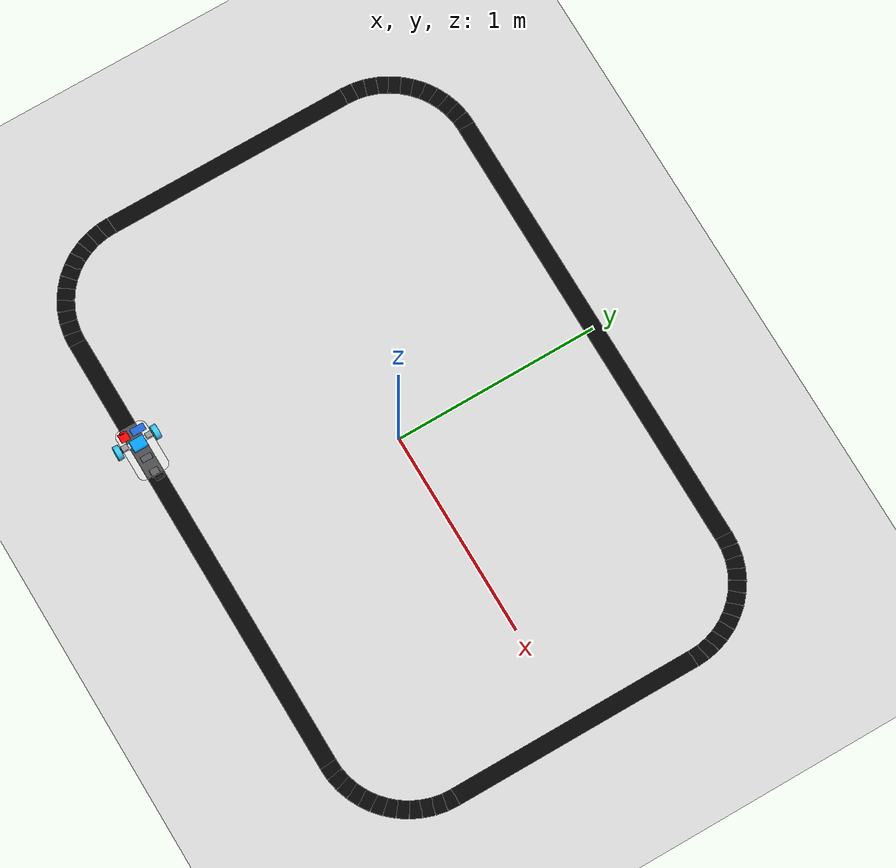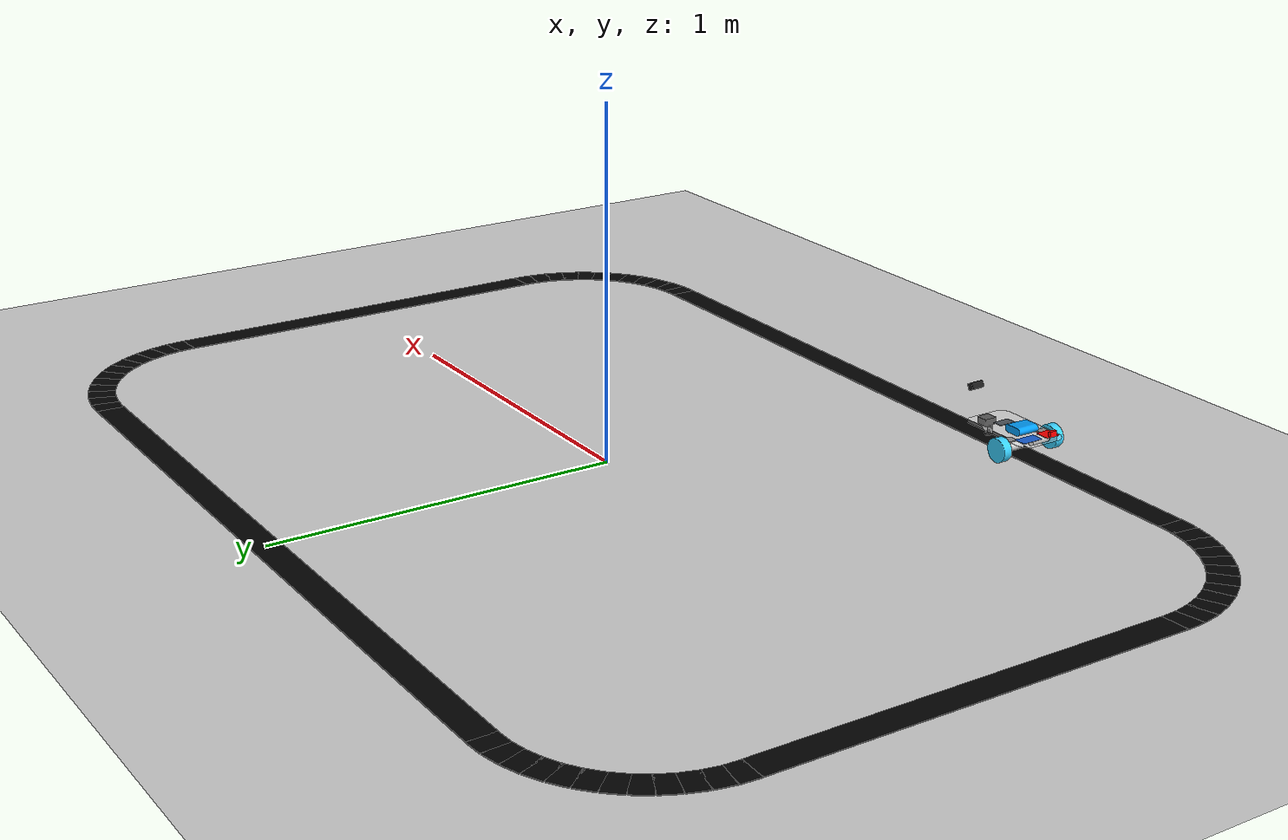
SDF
<?xml version="1.0" ?>
<sdf version="1.8">
  <world name="line_follower">
    <physics name="10ms" type="ignored">
      <max_step_size>0.01</max_step_size>
      <real_time_update_rate>0</real_time_update_rate>
    </physics>
    <plugin filename="gz-sim-physics-system"           name="gz::sim::systems::Physics"/>
    <plugin filename="gz-sim-contact-system"           name="gz::sim::systems::Contact"/>
    <plugin filename="gz-sim-sensors-system"           name="gz::sim::systems::Sensors">
      <render_engine>ogre2</render_engine>
    </plugin>
    <plugin filename="gz-sim-scene-broadcaster-system" name="gz::sim::systems::SceneBroadcaster"/>
    <plugin filename="gz-sim-user-commands-system"     name="gz::sim::systems::UserCommands"/>

    <plugin
      filename="gz-sim-python-system-loader-system"
      name="gz::sim::systems::PythonSystemLoader">
      <module_name>line_follower_learner</module_name>
      <agent_name>rover</agent_name>
      <frame_skip>3</frame_skip>
    </plugin>

    <light name="sun" type="directional">
      <cast_shadows>true</cast_shadows>
      <pose>0 0 10 0 0 0</pose>
      <diffuse>0.95 0.95 0.95 1</diffuse>
      <specular>0.2 0.2 0.2 1</specular>
      <direction>-0.5 0.1 -0.9</direction>
    </light>

    <model name="ground_plane">
      <static>true</static>
      <link name="link">
        <collision name="collision">
          <geometry><plane><normal>0 0 1</normal><size>100 100</size></plane></geometry>
        </collision>
        <visual name="visual">
          <geometry><plane><normal>0 0 1</normal><size>100 100</size></plane></geometry>
          <material>
            <!-- Light gray so the black line has high contrast in the
                 camera image. The threshold-based detector in the sync
                 gate relies on this. -->
            <ambient>0.85 0.85 0.85 1</ambient>
            <diffuse>0.85 0.85 0.85 1</diffuse>
            <specular>0.5 0.5 0.5 1</specular>
          </material>
        </visual>
      </link>
    </model>

    <model name="rover">
      <pose>-0.5 -1.0 0.085 0 0 1.5708</pose>
      <include merge="true">
        <uri>package://gazebo_gymnasium_resources/models/rover</uri>
      </include>
    </model>

    <!-- The line track. Mostly visual, no collision. -->
    <include>
      <uri>package://gazebo_gymnasium_resources/models/line_track</uri>
      <pose>0 0 0 0 0 0</pose>
    </include>
  </world>
</sdf>

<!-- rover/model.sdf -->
<sdf version='1.11'>
  <model name='rover'>
    <link name='base_link'>
      <inertial>
        <pose>-0.00237104 0.0277886 -0.020183599999999999 0 0 0</pose>
        <mass>0.35311599999999999</mass>
        <inertia>
          <ixx>0.00151318</ixx>
          <ixy>3.1576699999999999e-05</ixy>
          <ixz>4.1676499999999998e-06</ixz>
          <iyy>0.00036664100000000002</iyy>
          <iyz>-9.9848999999999999e-05</iyz>
          <izz>0.00182412</izz>
        </inertia>
      </inertial>
      <visual name='base_link_visual'>
        <pose>0.016086300000000001 -0.0852797 0.27276499999999998 -4.7878224133139768e-16 1.5707963267948966 0</pose>
        <geometry>
          <mesh>
            <scale>1 1 1</scale>
            <uri>model://gazebo_gymnasium_resources/models/rover/assets/left_motor.stl</uri>
          </mesh>
        </geometry>
        <material>
          <diffuse>0.808823764 0.808823764 0.808823764 1</diffuse>
          <ambient>0.808823764 0.808823764 0.808823764 1</ambient>
        </material>
      </visual>
      <visual name='base_link_visual_1'>
        <pose>-0.088691500000000006 -0.18808 -0.0273587 0 0 -1.5708</pose>
        <geometry>
          <mesh>
            <scale>1 1 1</scale>
            <uri>model://gazebo_gymnasium_resources/models/rover/assets/base_plate.stl</uri>
          </mesh>
        </geometry>
        <material>
          <diffuse>1 1 1 0.300000012</diffuse>
          <ambient>1 1 1 0.300000012</ambient>
        </material>
      </visual>
      <visual name='base_link_visual_2'>
        <pose>-0.47371400000000002 0.0946882 -0.046858700000000003 3.1415899999999999 0 -3.1415899999999999</pose>
        <geometry>
          <mesh>
            <scale>1 1 1</scale>
            <uri>model://gazebo_gymnasium_resources/models/rover/assets/front_wheel_upper_joint.stl</uri>
          </mesh>
        </geometry>
        <material>
          <diffuse>0.622548759 0.622548759 0.622548759 1</diffuse>
          <ambient>0.622548759 0.622548759 0.622548759 1</ambient>
        </material>
      </visual>
      <visual name='base_link_visual_3'>
        <pose>-0.47271400000000002 -0.22015199999999999 -0.046858700000000003 0 0 -3.1415899999999999</pose>
        <geometry>
          <mesh>
            <scale>1 1 1</scale>
            <uri>model://gazebo_gymnasium_resources/models/rover/assets/front_wheel_bracket.stl</uri>
          </mesh>
        </geometry>
        <material>
          <diffuse>0.127451256 0.127451256 0.127451256 1</diffuse>
          <ambient>0.127451256 0.127451256 0.127451256 1</ambient>
        </material>
      </visual>
      <visual name='base_link_visual_4'>
        <pose>-0.14862900000000001 0.205404 -0.0273587 3.1415899999999999 -1.503819326961759e-32 2.5673900000000004e-16</pose>
        <geometry>
          <mesh>
            <scale>1 1 1</scale>
            <uri>model://gazebo_gymnasium_resources/models/rover/assets/left_motor_bracket.stl</uri>
          </mesh>
        </geometry>
        <material>
          <diffuse>0.441176265 0.436275005 0.436275005 1</diffuse>
          <ambient>0.441176265 0.436275005 0.436275005 1</ambient>
        </material>
      </visual>
      <visual name='base_link_visual_5'>
        <pose>-0.124871 0.087574899999999997 -0.0243587 0 0 -1.5708</pose>
        <geometry>
          <mesh>
            <scale>1 1 1</scale>
            <uri>model://gazebo_gymnasium_resources/models/rover/assets/battery.stl</uri>
          </mesh>
        </geometry>
        <material>
          <diffuse>0.014705874 0.632352531 1 1</diffuse>
          <ambient>0.014705874 0.632352531 1 1</ambient>
        </material>
      </visual>
      <visual name='base_link_visual_6'>
        <pose>0.119292 0.094404399999999999 -0.021358700000000001 0 0 4.7878400000000003e-16</pose>
        <geometry>
          <mesh>
            <scale>1 1 1</scale>
            <uri>model://gazebo_gymnasium_resources/models/rover/assets/esp32.stl</uri>
          </mesh>
        </geometry>
        <material>
          <diffuse>0.328431249 0.352941275 0.377451241 1</diffuse>
          <ambient>0.328431249 0.352941275 0.377451241 1</ambient>
        </material>
      </visual>
      <visual name='base_link_visual_7'>
        <pose>0.20396 0.300238 -0.021358700000000001 0 0 4.7878400000000003e-16</pose>
        <geometry>
          <mesh>
            <scale>1 1 1</scale>
            <uri>model://gazebo_gymnasium_resources/models/rover/assets/motor_controller.stl</uri>
          </mesh>
        </geometry>
        <material>
          <diffuse>1 0 0 1</diffuse>
          <ambient>1 0 0 1</ambient>
        </material>
      </visual>
      <visual name='base_link_visual_8'>
        <pose>-0.019072599999999999 0.115532 0.27276499999999998 3.141589999990253 1.5707963267948966 0</pose>
        <geometry>
          <mesh>
            <scale>1 1 1</scale>
            <uri>model://gazebo_gymnasium_resources/models/rover/assets/right_motor.stl</uri>
          </mesh>
        </geometry>
        <material>
          <diffuse>0.808823764 0.808823764 0.808823764 1</diffuse>
          <ambient>0.808823764 0.808823764 0.808823764 1</ambient>
        </material>
      </visual>
      <visual name='base_link_visual_9'>
        <pose>0.26251000000000002 0.228404 -0.021358700000000001 0 0 4.7878400000000003e-16</pose>
        <geometry>
          <mesh>
            <scale>1 1 1</scale>
            <uri>model://gazebo_gymnasium_resources/models/rover/assets/voltage_regulator.stl</uri>
          </mesh>
        </geometry>
        <material>
          <diffuse>0.107843123 0.397058755 0.862744987 1</diffuse>
          <ambient>0.107843123 0.397058755 0.862744987 1</ambient>
        </material>
      </visual>
      <visual name='base_link_visual_10'>
        <pose>0.14564199999999999 0.0058481200000000001 -0.0273587 3.1415899999999999 0 -3.1415899999999999</pose>
        <geometry>
          <mesh>
            <scale>1 1 1</scale>
            <uri>model://gazebo_gymnasium_resources/models/rover/assets/right_motor_bracket.stl</uri>
          </mesh>
        </geometry>
        <material>
          <diffuse>0.441176265 0.436275005 0.436275005 1</diffuse>
          <ambient>0.441176265 0.436275005 0.436275005 1</ambient>
        </material>
      </visual>
    </link>
    <joint name='front_swivel' type='revolute'>
      <pose relative_to='base_link'>-0.00149314 -0.097873799999999997 -0.050358699999999999 0 2.4651899999999999e-32 3.67761e-16</pose>
      <parent>base_link</parent>
      <child>front_wheel_lower_joint</child>
      <axis>
        <xyz>0 0 1</xyz>
        <limit>
          <lower>-inf</lower>
          <upper>inf</upper>
        </limit>
        <dynamics>
          <spring_reference>0</spring_reference>
          <spring_stiffness>0</spring_stiffness>
        </dynamics>
      </axis>
    </joint>
    <link name='front_wheel_lower_joint'>
      <pose relative_to='front_swivel'>0 0 0 0 0 0</pose>
      <inertial>
        <pose>0 0 0 0 0 0</pose>
        <mass>1.0000000000000001e-09</mass>
        <inertia>
          <ixx>1.0000000000000001e-09</ixx>
          <ixy>0</ixy>
          <ixz>0</ixz>
          <iyy>1.0000000000000001e-09</iyy>
          <iyz>0</iyz>
          <izz>1.0000000000000001e-09</izz>
        </inertia>
      </inertial>
      <visual name='front_wheel_lower_joint_visual'>
        <pose>0.34329399999999999 -0.19021199999999999 0 3.1415899999999999 0 6.16298e-33</pose>
        <geometry>
          <mesh>
            <scale>1 1 1</scale>
            <uri>model://gazebo_gymnasium_resources/models/rover/assets/front_wheel_lower_joint.stl</uri>
          </mesh>
        </geometry>
        <material>
          <diffuse>0.808823764 0.808823764 0.808823764 1</diffuse>
          <ambient>0.808823764 0.808823764 0.808823764 1</ambient>
        </material>
      </visual>
    </link>
    <joint name='front_axle' type='revolute'>
      <pose relative_to='front_wheel_lower_joint'>0.0063499999999999997 0.0096500000000000006 -0.017113199999999999 2.6535897933403332e-06 -1.5707926536359933 3.1415926535897931</pose>
      <parent>front_wheel_lower_joint</parent>
      <child>front_wheel</child>
      <axis>
        <xyz>0 0 1</xyz>
        <limit>
          <lower>-inf</lower>
          <upper>inf</upper>
        </limit>
        <dynamics>
          <spring_reference>0</spring_reference>
          <spring_stiffness>0</spring_stiffness>
        </dynamics>
      </axis>
    </joint>
    <link name='front_wheel'>
      <pose relative_to='front_axle'>0 0 0 0 0 0</pose>
      <inertial>
        <pose>0 0 0 0 0 0</pose>
        <mass>1.0000000000000001e-09</mass>
        <inertia>
          <ixx>1.0000000000000001e-09</ixx>
          <ixy>0</ixy>
          <ixz>0</ixz>
          <iyy>1.0000000000000001e-09</iyy>
          <iyz>0</iyz>
          <izz>1.0000000000000001e-09</izz>
        </inertia>
      </inertial>
      <visual name='front_wheel_visual'>
        <pose>0.34473399999999998 -0.122278 0 3.1415899999999999 9.3588297156177823e-62 -2.5316400000000017e-47</pose>
        <geometry>
          <mesh>
            <scale>1 1 1</scale>
            <uri>model://gazebo_gymnasium_resources/models/rover/assets/front_wheel.stl</uri>
          </mesh>
        </geometry>
        <material>
          <diffuse>0.308823764 0.308823764 0.308823764 1</diffuse>
          <ambient>0.308823764 0.308823764 0.308823764 1</ambient>
        </material>
      </visual>
      <collision name='front_wheel_collision'>
        <geometry>
          <sphere>
            <radius>0.025</radius>
          </sphere>
        </geometry>
        <surface>
          <friction>
            <ode>
              <mu>0.1</mu>
              <mu2>0.1</mu2>
            </ode>
          </friction>
        </surface>
      </collision>

    </link>
    <joint name='left_axle' type='revolute'>
      <pose relative_to='base_link'>0.079786300000000004 0.061126199999999999 -0.050408700000000001 1.5708 -4.4408920985006262e-16 -1.5708</pose>
      <parent>base_link</parent>
      <child>left_wheel</child>
      <axis>
        <xyz>0 0 1</xyz>
        <limit>
          <lower>-inf</lower>
          <upper>inf</upper>
        </limit>
        <dynamics>
          <spring_reference>0</spring_reference>
          <spring_stiffness>0</spring_stiffness>
        </dynamics>
      </axis>
    </joint>
    <link name='left_wheel'>
      <pose relative_to='left_axle'>0 0 0 0 0 0</pose>
      <inertial>
        <pose>5.5511199999999995e-17 -2.7755599999999997e-17 -0.01325 0 0 0</pose>
        <mass>0.034000000000000002</mass>
        <inertia>
          <ixx>1.2006300000000001e-05</ixx>
          <ixy>-8.3133099999999994e-37</ixy>
          <ixz>1.6409400000000001e-36</ixz>
          <iyy>1.2006300000000001e-05</iyy>
          <iyz>7.5581399999999997e-38</iyz>
          <izz>2.0040399999999999e-05</izz>
        </inertia>
      </inertial>
      <visual name='left_wheel_visual'>
        <pose>0.46452900000000003 -0.12765399999999999 -0.026499999999999999 -9.4077000000000004e-33 -8.9189099999999999e-32 2.4630199999999999e-32</pose>
        <geometry>
          <mesh>
            <scale>1 1 1</scale>
            <uri>model://gazebo_gymnasium_resources/models/rover/assets/left_wheel.stl</uri>
          </mesh>
        </geometry>
        <material>
          <diffuse>0.220588744 0.818627477 1 1</diffuse>
          <ambient>0.220588744 0.818627477 1 1</ambient>
        </material>
      </visual>
      <collision name='left_wheel_collision'>
        <geometry>
          <sphere>
            <radius>0.034</radius>
          </sphere>
        </geometry>
        <surface>
          <friction>
            <ode>
              <mu>1.2</mu>
              <mu2>0.8</mu2>
            </ode>
          </friction>
        </surface>
      </collision>

    </link>
    <joint name='right_axle' type='revolute'>
      <pose relative_to='base_link'>-0.082772600000000002 0.061126199999999999 -0.050408700000000001 3.1415926535897918 1.5707926536359933 -3.1415926535897931</pose>
      <parent>base_link</parent>
      <child>right_wheel</child>
      <axis>
        <xyz>0 0 -1</xyz>
        <limit>
          <lower>-inf</lower>
          <upper>inf</upper>
        </limit>
        <dynamics>
          <spring_reference>0</spring_reference>
          <spring_stiffness>0</spring_stiffness>
        </dynamics>
      </axis>
    </joint>
    <link name='right_wheel'>
      <pose relative_to='right_axle'>0 0 0 0 0 0</pose>
      <inertial>
        <pose>0 -3.44865e-32 -0.01325 0 0 0</pose>
        <mass>0.034000000000000002</mass>
        <inertia>
          <ixx>1.2006300000000001e-05</ixx>
          <ixy>1.77587e-36</ixy>
          <ixz>1.38229e-36</ixz>
          <iyy>1.2006300000000001e-05</iyy>
          <iyz>-4.2157999999999999e-37</iyz>
          <izz>2.0040399999999999e-05</izz>
        </inertia>
      </inertial>
      <visual name='right_wheel_visual'>
        <pose>0.46452900000000003 -0.028653700000000001 -0.026499999999999999 -1.8503099999999999e-32 8.4744599999999993e-34 7.3955699999999999e-32</pose>
        <geometry>
          <mesh>
            <scale>1 1 1</scale>
            <uri>model://gazebo_gymnasium_resources/models/rover/assets/right_wheel.stl</uri>
          </mesh>
        </geometry>
        <material>
          <diffuse>0.220588744 0.818627477 1 1</diffuse>
          <ambient>0.220588744 0.818627477 1 1</ambient>
        </material>
      </visual>
      <collision name='right_wheel_collision'>
        <geometry>
          <sphere>
            <radius>0.034</radius>
          </sphere>
        </geometry>
        <surface>
          <friction>
            <ode>
              <mu>1.2</mu>
              <mu2>0.8</mu2>
            </ode>
          </friction>
        </surface>
      </collision>

    </link>

    <plugin
      filename="gz-sim-diff-drive-system"
      name="gz::sim::systems::DiffDrive">
      <left_joint>left_axle</left_joint>
      <right_joint>right_axle</right_joint>
      <wheel_separation>0.163</wheel_separation>
      <wheel_radius>0.034</wheel_radius>
      <odom_publish_frequency>30</odom_publish_frequency>
      <!-- Physical caster-pop limit is around 1 m/s forward; clamp here
           so even a misbehaving policy can't blow past it. Yaw limit
           matches the env's MAX_Z_VEL spec. -->
      <max_linear_velocity>1.0</max_linear_velocity>
      <min_linear_velocity>-1.0</min_linear_velocity>
      <max_angular_velocity>1.25</max_angular_velocity>
      <min_angular_velocity>-1.25</min_angular_velocity>
    </plugin>

    <plugin
      filename="gz-sim-joint-state-publisher-system"
      name="gz::sim::systems::JointStatePublisher">
      <joint_name>left_axle</joint_name>
      <joint_name>right_axle</joint_name>
      <joint_name>front_swivel</joint_name>
      <joint_name>front_axle</joint_name>
    </plugin>

    <link name="camera_link">
      <pose relative_to="base_link">0 -0.15 0.05 0 0.5 -1.5708</pose>
      <inertial>
        <mass>0.005</mass>
        <inertia>
          <ixx>1e-7</ixx>
          <ixy>0</ixy>
          <ixz>0</ixz>
          <iyy>1e-7</iyy>
          <iyz>0</iyz>
          <izz>1e-7</izz>
        </inertia>
      </inertial>
      <visual name="visual">
        <geometry>
          <box>
            <size>0.02 0.04 0.02</size>
          </box>
        </geometry>
        <material>
          <ambient>0.1 0.1 0.1 1</ambient>
          <diffuse>0.1 0.1 0.1 1</diffuse>
          <specular>0.05 0.05 0.05 1</specular>
        </material>
      </visual>
      <sensor name="camera" type="camera">
        <pose>0 0 0 0 0 0</pose>
        <topic>camera</topic>
        <gz_frame_id>rover/camera_link</gz_frame_id>
        <update_rate>15</update_rate>
        <always_on>1</always_on>
        <visualize>true</visualize>
        <camera>
          <horizontal_fov>1.047</horizontal_fov>
          <image>
            <width>160</width>
            <height>120</height>
            <format>R8G8B8</format>
          </image>
          <clip>
            <near>0.05</near>
            <far>50</far>
          </clip>
        </camera>
      </sensor>
    </link>

    <joint name="camera_joint" type="fixed">
      <parent>base_link</parent>
      <child>camera_link</child>
    </joint>

  </model>
</sdf>

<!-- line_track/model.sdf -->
<sdf version="1.8">
  <!-- Auto-generated by scripts/generate_line_track.py. Hand edits will be
       lost on regeneration; tune the constants at the top of the script
       and re-run instead. -->
  <model name="line_track">
    <static>true</static>
    <link name="track">
      <visual name='straight_top'>
        <pose>0.000000 1.000000 0.001000 0.000000 0.000000 0.000000</pose>
        <geometry>
          <box>
            <size>2.200000 0.080000 0.002000</size>
          </box>
        </geometry>
      <material>
        <ambient>0.02 0.02 0.02 1</ambient>
        <diffuse>0.02 0.02 0.02 1</diffuse>
        <specular>0.0 0.0 0.0 1</specular>
      </material>
      </visual>
      <visual name='straight_bottom'>
        <pose>0.000000 -1.000000 0.001000 0.000000 0.000000 0.000000</pose>
        <geometry>
          <box>
            <size>2.200000 0.080000 0.002000</size>
          </box>
        </geometry>
      <material>
        <ambient>0.02 0.02 0.02 1</ambient>
        <diffuse>0.02 0.02 0.02 1</diffuse>
        <specular>0.0 0.0 0.0 1</specular>
      </material>
      </visual>
      <visual name='straight_right'>
        <pose>1.500000 0.000000 0.001000 0.000000 0.000000 0.000000</pose>
        <geometry>
          <box>
            <size>0.080000 1.200000 0.002000</size>
          </box>
        </geometry>
      <material>
        <ambient>0.02 0.02 0.02 1</ambient>
        <diffuse>0.02 0.02 0.02 1</diffuse>
        <specular>0.0 0.0 0.0 1</specular>
      </material>
      </visual>
      <visual name='straight_left'>
        <pose>-1.500000 0.000000 0.001000 0.000000 0.000000 0.000000</pose>
        <geometry>
          <box>
            <size>0.080000 1.200000 0.002000</size>
          </box>
        </geometry>
      <material>
        <ambient>0.02 0.02 0.02 1</ambient>
        <diffuse>0.02 0.02 0.02 1</diffuse>
        <specular>0.0 0.0 0.0 1</specular>
      </material>
      </visual>
      <visual name='corner_tr_00'>
        <pose>1.499144 0.626161 0.001000 0.000000 0.000000 1.636246</pose>
        <geometry>
          <box>
            <size>0.054978 0.080000 0.002000</size>
          </box>
        </geometry>
      <material>
        <ambient>0.02 0.02 0.02 1</ambient>
        <diffuse>0.02 0.02 0.02 1</diffuse>
        <specular>0.0 0.0 0.0 1</specular>
      </material>
      </visual>
      <visual name='corner_tr_01'>
        <pose>1.492314 0.678036 0.001000 0.000000 0.000000 1.767146</pose>
        <geometry>
          <box>
            <size>0.054978 0.080000 0.002000</size>
          </box>
        </geometry>
      <material>
        <ambient>0.02 0.02 0.02 1</ambient>
        <diffuse>0.02 0.02 0.02 1</diffuse>
        <specular>0.0 0.0 0.0 1</specular>
      </material>
      </visual>
      <visual name='corner_tr_02'>
        <pose>1.478772 0.728576 0.001000 0.000000 0.000000 1.898046</pose>
        <geometry>
          <box>
            <size>0.054978 0.080000 0.002000</size>
          </box>
        </geometry>
      <material>
        <ambient>0.02 0.02 0.02 1</ambient>
        <diffuse>0.02 0.02 0.02 1</diffuse>
        <specular>0.0 0.0 0.0 1</specular>
      </material>
      </visual>
      <visual name='corner_tr_03'>
        <pose>1.458749 0.776915 0.001000 0.000000 0.000000 2.028945</pose>
        <geometry>
          <box>
            <size>0.054978 0.080000 0.002000</size>
          </box>
        </geometry>
      <material>
        <ambient>0.02 0.02 0.02 1</ambient>
        <diffuse>0.02 0.02 0.02 1</diffuse>
        <specular>0.0 0.0 0.0 1</specular>
      </material>
      </visual>
      <visual name='corner_tr_04'>
        <pose>1.432588 0.822228 0.001000 0.000000 0.000000 2.159845</pose>
        <geometry>
          <box>
            <size>0.054978 0.080000 0.002000</size>
          </box>
        </geometry>
      <material>
        <ambient>0.02 0.02 0.02 1</ambient>
        <diffuse>0.02 0.02 0.02 1</diffuse>
        <specular>0.0 0.0 0.0 1</specular>
      </material>
      </visual>
      <visual name='corner_tr_05'>
        <pose>1.400736 0.863738 0.001000 0.000000 0.000000 2.290745</pose>
        <geometry>
          <box>
            <size>0.054978 0.080000 0.002000</size>
          </box>
        </geometry>
      <material>
        <ambient>0.02 0.02 0.02 1</ambient>
        <diffuse>0.02 0.02 0.02 1</diffuse>
        <specular>0.0 0.0 0.0 1</specular>
      </material>
      </visual>
      <visual name='corner_tr_06'>
        <pose>1.363738 0.900736 0.001000 0.000000 0.000000 2.421644</pose>
        <geometry>
          <box>
            <size>0.054978 0.080000 0.002000</size>
          </box>
        </geometry>
      <material>
        <ambient>0.02 0.02 0.02 1</ambient>
        <diffuse>0.02 0.02 0.02 1</diffuse>
        <specular>0.0 0.0 0.0 1</specular>
      </material>
      </visual>
      <visual name='corner_tr_07'>
        <pose>1.322228 0.932588 0.001000 0.000000 0.000000 2.552544</pose>
        <geometry>
          <box>
            <size>0.054978 0.080000 0.002000</size>
          </box>
        </geometry>
      <material>
        <ambient>0.02 0.02 0.02 1</ambient>
        <diffuse>0.02 0.02 0.02 1</diffuse>
        <specular>0.0 0.0 0.0 1</specular>
      </material>
      </visual>
      <visual name='corner_tr_08'>
        <pose>1.276915 0.958749 0.001000 0.000000 0.000000 2.683444</pose>
        <geometry>
          <box>
            <size>0.054978 0.080000 0.002000</size>
          </box>
        </geometry>
      <material>
        <ambient>0.02 0.02 0.02 1</ambient>
        <diffuse>0.02 0.02 0.02 1</diffuse>
        <specular>0.0 0.0 0.0 1</specular>
      </material>
      </visual>
      <visual name='corner_tr_09'>
        <pose>1.228576 0.978772 0.001000 0.000000 0.000000 2.814343</pose>
        <geometry>
          <box>
            <size>0.054978 0.080000 0.002000</size>
          </box>
        </geometry>
      <material>
        <ambient>0.02 0.02 0.02 1</ambient>
        <diffuse>0.02 0.02 0.02 1</diffuse>
        <specular>0.0 0.0 0.0 1</specular>
      </material>
      </visual>
      <visual name='corner_tr_10'>
        <pose>1.178036 0.992314 0.001000 0.000000 0.000000 2.945243</pose>
        <geometry>
          <box>
            <size>0.054978 0.080000 0.002000</size>
          </box>
        </geometry>
      <material>
        <ambient>0.02 0.02 0.02 1</ambient>
        <diffuse>0.02 0.02 0.02 1</diffuse>
        <specular>0.0 0.0 0.0 1</specular>
      </material>
      </visual>
      <visual name='corner_tr_11'>
        <pose>1.126161 0.999144 0.001000 0.000000 0.000000 3.076143</pose>
        <geometry>
          <box>
            <size>0.054978 0.080000 0.002000</size>
          </box>
        </geometry>
      <material>
        <ambient>0.02 0.02 0.02 1</ambient>
        <diffuse>0.02 0.02 0.02 1</diffuse>
        <specular>0.0 0.0 0.0 1</specular>
      </material>
      </visual>
      <visual name='corner_tl_00'>
        <pose>-1.126161 0.999144 0.001000 0.000000 0.000000 3.207043</pose>
        <geometry>
          <box>
            <size>0.054978 0.080000 0.002000</size>
          </box>
        </geometry>
      <material>
        <ambient>0.02 0.02 0.02 1</ambient>
        <diffuse>0.02 0.02 0.02 1</diffuse>
        <specular>0.0 0.0 0.0 1</specular>
      </material>
      </visual>
      <visual name='corner_tl_01'>
        <pose>-1.178036 0.992314 0.001000 0.000000 0.000000 3.337942</pose>
        <geometry>
          <box>
            <size>0.054978 0.080000 0.002000</size>
          </box>
        </geometry>
      <material>
        <ambient>0.02 0.02 0.02 1</ambient>
        <diffuse>0.02 0.02 0.02 1</diffuse>
        <specular>0.0 0.0 0.0 1</specular>
      </material>
      </visual>
      <visual name='corner_tl_02'>
        <pose>-1.228576 0.978772 0.001000 0.000000 0.000000 3.468842</pose>
        <geometry>
          <box>
            <size>0.054978 0.080000 0.002000</size>
          </box>
        </geometry>
      <material>
        <ambient>0.02 0.02 0.02 1</ambient>
        <diffuse>0.02 0.02 0.02 1</diffuse>
        <specular>0.0 0.0 0.0 1</specular>
      </material>
      </visual>
      <visual name='corner_tl_03'>
        <pose>-1.276915 0.958749 0.001000 0.000000 0.000000 3.599742</pose>
        <geometry>
          <box>
            <size>0.054978 0.080000 0.002000</size>
          </box>
        </geometry>
      <material>
        <ambient>0.02 0.02 0.02 1</ambient>
        <diffuse>0.02 0.02 0.02 1</diffuse>
        <specular>0.0 0.0 0.0 1</specular>
      </material>
      </visual>
      <visual name='corner_tl_04'>
        <pose>-1.322228 0.932588 0.001000 0.000000 0.000000 3.730641</pose>
        <geometry>
          <box>
            <size>0.054978 0.080000 0.002000</size>
          </box>
        </geometry>
      <material>
        <ambient>0.02 0.02 0.02 1</ambient>
        <diffuse>0.02 0.02 0.02 1</diffuse>
        <specular>0.0 0.0 0.0 1</specular>
      </material>
      </visual>
      <visual name='corner_tl_05'>
        <pose>-1.363738 0.900736 0.001000 0.000000 0.000000 3.861541</pose>
        <geometry>
          <box>
            <size>0.054978 0.080000 0.002000</size>
          </box>
        </geometry>
      <material>
        <ambient>0.02 0.02 0.02 1</ambient>
        <diffuse>0.02 0.02 0.02 1</diffuse>
        <specular>0.0 0.0 0.0 1</specular>
      </material>
      </visual>
      <visual name='corner_tl_06'>
        <pose>-1.400736 0.863738 0.001000 0.000000 0.000000 3.992441</pose>
        <geometry>
          <box>
            <size>0.054978 0.080000 0.002000</size>
          </box>
        </geometry>
      <material>
        <ambient>0.02 0.02 0.02 1</ambient>
        <diffuse>0.02 0.02 0.02 1</diffuse>
        <specular>0.0 0.0 0.0 1</specular>
      </material>
      </visual>
      <visual name='corner_tl_07'>
        <pose>-1.432588 0.822228 0.001000 0.000000 0.000000 4.123340</pose>
        <geometry>
          <box>
            <size>0.054978 0.080000 0.002000</size>
          </box>
        </geometry>
      <material>
        <ambient>0.02 0.02 0.02 1</ambient>
        <diffuse>0.02 0.02 0.02 1</diffuse>
        <specular>0.0 0.0 0.0 1</specular>
      </material>
      </visual>
      <visual name='corner_tl_08'>
        <pose>-1.458749 0.776915 0.001000 0.000000 0.000000 4.254240</pose>
        <geometry>
          <box>
            <size>0.054978 0.080000 0.002000</size>
          </box>
        </geometry>
      <material>
        <ambient>0.02 0.02 0.02 1</ambient>
        <diffuse>0.02 0.02 0.02 1</diffuse>
        <specular>0.0 0.0 0.0 1</specular>
      </material>
      </visual>
      <visual name='corner_tl_09'>
        <pose>-1.478772 0.728576 0.001000 0.000000 0.000000 4.385140</pose>
        <geometry>
          <box>
            <size>0.054978 0.080000 0.002000</size>
          </box>
        </geometry>
      <material>
        <ambient>0.02 0.02 0.02 1</ambient>
        <diffuse>0.02 0.02 0.02 1</diffuse>
        <specular>0.0 0.0 0.0 1</specular>
      </material>
      </visual>
      <visual name='corner_tl_10'>
        <pose>-1.492314 0.678036 0.001000 0.000000 0.000000 4.516039</pose>
        <geometry>
          <box>
            <size>0.054978 0.080000 0.002000</size>
          </box>
        </geometry>
      <material>
        <ambient>0.02 0.02 0.02 1</ambient>
        <diffuse>0.02 0.02 0.02 1</diffuse>
        <specular>0.0 0.0 0.0 1</specular>
      </material>
      </visual>
      <visual name='corner_tl_11'>
        <pose>-1.499144 0.626161 0.001000 0.000000 0.000000 4.646939</pose>
        <geometry>
          <box>
            <size>0.054978 0.080000 0.002000</size>
          </box>
        </geometry>
      <material>
        <ambient>0.02 0.02 0.02 1</ambient>
        <diffuse>0.02 0.02 0.02 1</diffuse>
        <specular>0.0 0.0 0.0 1</specular>
      </material>
      </visual>
      <visual name='corner_bl_00'>
        <pose>-1.499144 -0.626161 0.001000 0.000000 0.000000 4.777839</pose>
        <geometry>
          <box>
            <size>0.054978 0.080000 0.002000</size>
          </box>
        </geometry>
      <material>
        <ambient>0.02 0.02 0.02 1</ambient>
        <diffuse>0.02 0.02 0.02 1</diffuse>
        <specular>0.0 0.0 0.0 1</specular>
      </material>
      </visual>
      <visual name='corner_bl_01'>
        <pose>-1.492314 -0.678036 0.001000 0.000000 0.000000 4.908739</pose>
        <geometry>
          <box>
            <size>0.054978 0.080000 0.002000</size>
          </box>
        </geometry>
      <material>
        <ambient>0.02 0.02 0.02 1</ambient>
        <diffuse>0.02 0.02 0.02 1</diffuse>
        <specular>0.0 0.0 0.0 1</specular>
      </material>
      </visual>
      <visual name='corner_bl_02'>
        <pose>-1.478772 -0.728576 0.001000 0.000000 0.000000 5.039638</pose>
        <geometry>
          <box>
            <size>0.054978 0.080000 0.002000</size>
          </box>
        </geometry>
      <material>
        <ambient>0.02 0.02 0.02 1</ambient>
        <diffuse>0.02 0.02 0.02 1</diffuse>
        <specular>0.0 0.0 0.0 1</specular>
      </material>
      </visual>
      <visual name='corner_bl_03'>
        <pose>-1.458749 -0.776915 0.001000 0.000000 0.000000 5.170538</pose>
        <geometry>
          <box>
            <size>0.054978 0.080000 0.002000</size>
          </box>
        </geometry>
      <material>
        <ambient>0.02 0.02 0.02 1</ambient>
        <diffuse>0.02 0.02 0.02 1</diffuse>
        <specular>0.0 0.0 0.0 1</specular>
      </material>
      </visual>
      <visual name='corner_bl_04'>
        <pose>-1.432588 -0.822228 0.001000 0.000000 0.000000 5.301438</pose>
        <geometry>
          <box>
            <size>0.054978 0.080000 0.002000</size>
          </box>
        </geometry>
      <material>
        <ambient>0.02 0.02 0.02 1</ambient>
        <diffuse>0.02 0.02 0.02 1</diffuse>
        <specular>0.0 0.0 0.0 1</specular>
      </material>
      </visual>
      <visual name='corner_bl_05'>
        <pose>-1.400736 -0.863738 0.001000 0.000000 0.000000 5.432337</pose>
        <geometry>
          <box>
            <size>0.054978 0.080000 0.002000</size>
          </box>
        </geometry>
      <material>
        <ambient>0.02 0.02 0.02 1</ambient>
        <diffuse>0.02 0.02 0.02 1</diffuse>
        <specular>0.0 0.0 0.0 1</specular>
      </material>
      </visual>
      <visual name='corner_bl_06'>
        <pose>-1.363738 -0.900736 0.001000 0.000000 0.000000 5.563237</pose>
        <geometry>
          <box>
            <size>0.054978 0.080000 0.002000</size>
          </box>
        </geometry>
      <material>
        <ambient>0.02 0.02 0.02 1</ambient>
        <diffuse>0.02 0.02 0.02 1</diffuse>
        <specular>0.0 0.0 0.0 1</specular>
      </material>
      </visual>
      <visual name='corner_bl_07'>
        <pose>-1.322228 -0.932588 0.001000 0.000000 0.000000 5.694137</pose>
        <geometry>
          <box>
            <size>0.054978 0.080000 0.002000</size>
          </box>
        </geometry>
      <material>
        <ambient>0.02 0.02 0.02 1</ambient>
        <diffuse>0.02 0.02 0.02 1</diffuse>
        <specular>0.0 0.0 0.0 1</specular>
      </material>
      </visual>
      <visual name='corner_bl_08'>
        <pose>-1.276915 -0.958749 0.001000 0.000000 0.000000 5.825036</pose>
        <geometry>
          <box>
            <size>0.054978 0.080000 0.002000</size>
          </box>
        </geometry>
      <material>
        <ambient>0.02 0.02 0.02 1</ambient>
        <diffuse>0.02 0.02 0.02 1</diffuse>
        <specular>0.0 0.0 0.0 1</specular>
      </material>
      </visual>
      <visual name='corner_bl_09'>
        <pose>-1.228576 -0.978772 0.001000 0.000000 0.000000 5.955936</pose>
        <geometry>
          <box>
            <size>0.054978 0.080000 0.002000</size>
          </box>
        </geometry>
      <material>
        <ambient>0.02 0.02 0.02 1</ambient>
        <diffuse>0.02 0.02 0.02 1</diffuse>
        <specular>0.0 0.0 0.0 1</specular>
      </material>
      </visual>
      <visual name='corner_bl_10'>
        <pose>-1.178036 -0.992314 0.001000 0.000000 0.000000 6.086836</pose>
        <geometry>
          <box>
            <size>0.054978 0.080000 0.002000</size>
          </box>
        </geometry>
      <material>
        <ambient>0.02 0.02 0.02 1</ambient>
        <diffuse>0.02 0.02 0.02 1</diffuse>
        <specular>0.0 0.0 0.0 1</specular>
      </material>
      </visual>
      <visual name='corner_bl_11'>
        <pose>-1.126161 -0.999144 0.001000 0.000000 0.000000 6.217735</pose>
        <geometry>
          <box>
            <size>0.054978 0.080000 0.002000</size>
          </box>
        </geometry>
      <material>
        <ambient>0.02 0.02 0.02 1</ambient>
        <diffuse>0.02 0.02 0.02 1</diffuse>
        <specular>0.0 0.0 0.0 1</specular>
      </material>
      </visual>
      <visual name='corner_br_00'>
        <pose>1.126161 -0.999144 0.001000 0.000000 0.000000 6.348635</pose>
        <geometry>
          <box>
            <size>0.054978 0.080000 0.002000</size>
          </box>
        </geometry>
      <material>
        <ambient>0.02 0.02 0.02 1</ambient>
        <diffuse>0.02 0.02 0.02 1</diffuse>
        <specular>0.0 0.0 0.0 1</specular>
      </material>
      </visual>
      <visual name='corner_br_01'>
        <pose>1.178036 -0.992314 0.001000 0.000000 0.000000 6.479535</pose>
        <geometry>
          <box>
            <size>0.054978 0.080000 0.002000</size>
          </box>
        </geometry>
      <material>
        <ambient>0.02 0.02 0.02 1</ambient>
        <diffuse>0.02 0.02 0.02 1</diffuse>
        <specular>0.0 0.0 0.0 1</specular>
      </material>
      </visual>
      <visual name='corner_br_02'>
        <pose>1.228576 -0.978772 0.001000 0.000000 0.000000 6.610435</pose>
        <geometry>
          <box>
            <size>0.054978 0.080000 0.002000</size>
          </box>
        </geometry>
      <material>
        <ambient>0.02 0.02 0.02 1</ambient>
        <diffuse>0.02 0.02 0.02 1</diffuse>
        <specular>0.0 0.0 0.0 1</specular>
      </material>
      </visual>
      <visual name='corner_br_03'>
        <pose>1.276915 -0.958749 0.001000 0.000000 0.000000 6.741334</pose>
        <geometry>
          <box>
            <size>0.054978 0.080000 0.002000</size>
          </box>
        </geometry>
      <material>
        <ambient>0.02 0.02 0.02 1</ambient>
        <diffuse>0.02 0.02 0.02 1</diffuse>
        <specular>0.0 0.0 0.0 1</specular>
      </material>
      </visual>
      <visual name='corner_br_04'>
        <pose>1.322228 -0.932588 0.001000 0.000000 0.000000 6.872234</pose>
        <geometry>
          <box>
            <size>0.054978 0.080000 0.002000</size>
          </box>
        </geometry>
      <material>
        <ambient>0.02 0.02 0.02 1</ambient>
        <diffuse>0.02 0.02 0.02 1</diffuse>
        <specular>0.0 0.0 0.0 1</specular>
      </material>
      </visual>
      <visual name='corner_br_05'>
        <pose>1.363738 -0.900736 0.001000 0.000000 0.000000 7.003134</pose>
        <geometry>
          <box>
            <size>0.054978 0.080000 0.002000</size>
          </box>
        </geometry>
      <material>
        <ambient>0.02 0.02 0.02 1</ambient>
        <diffuse>0.02 0.02 0.02 1</diffuse>
        <specular>0.0 0.0 0.0 1</specular>
      </material>
      </visual>
      <visual name='corner_br_06'>
        <pose>1.400736 -0.863738 0.001000 0.000000 0.000000 7.134033</pose>
        <geometry>
          <box>
            <size>0.054978 0.080000 0.002000</size>
          </box>
        </geometry>
      <material>
        <ambient>0.02 0.02 0.02 1</ambient>
        <diffuse>0.02 0.02 0.02 1</diffuse>
        <specular>0.0 0.0 0.0 1</specular>
      </material>
      </visual>
      <visual name='corner_br_07'>
        <pose>1.432588 -0.822228 0.001000 0.000000 0.000000 7.264933</pose>
        <geometry>
          <box>
            <size>0.054978 0.080000 0.002000</size>
          </box>
        </geometry>
      <material>
        <ambient>0.02 0.02 0.02 1</ambient>
        <diffuse>0.02 0.02 0.02 1</diffuse>
        <specular>0.0 0.0 0.0 1</specular>
      </material>
      </visual>
      <visual name='corner_br_08'>
        <pose>1.458749 -0.776915 0.001000 0.000000 0.000000 7.395833</pose>
        <geometry>
          <box>
            <size>0.054978 0.080000 0.002000</size>
          </box>
        </geometry>
      <material>
        <ambient>0.02 0.02 0.02 1</ambient>
        <diffuse>0.02 0.02 0.02 1</diffuse>
        <specular>0.0 0.0 0.0 1</specular>
      </material>
      </visual>
      <visual name='corner_br_09'>
        <pose>1.478772 -0.728576 0.001000 0.000000 0.000000 7.526732</pose>
        <geometry>
          <box>
            <size>0.054978 0.080000 0.002000</size>
          </box>
        </geometry>
      <material>
        <ambient>0.02 0.02 0.02 1</ambient>
        <diffuse>0.02 0.02 0.02 1</diffuse>
        <specular>0.0 0.0 0.0 1</specular>
      </material>
      </visual>
      <visual name='corner_br_10'>
        <pose>1.492314 -0.678036 0.001000 0.000000 0.000000 7.657632</pose>
        <geometry>
          <box>
            <size>0.054978 0.080000 0.002000</size>
          </box>
        </geometry>
      <material>
        <ambient>0.02 0.02 0.02 1</ambient>
        <diffuse>0.02 0.02 0.02 1</diffuse>
        <specular>0.0 0.0 0.0 1</specular>
      </material>
      </visual>
      <visual name='corner_br_11'>
        <pose>1.499144 -0.626161 0.001000 0.000000 0.000000 7.788532</pose>
        <geometry>
          <box>
            <size>0.054978 0.080000 0.002000</size>
          </box>
        </geometry>
      <material>
        <ambient>0.02 0.02 0.02 1</ambient>
        <diffuse>0.02 0.02 0.02 1</diffuse>
        <specular>0.0 0.0 0.0 1</specular>
      </material>
      </visual>
    </link>
  </model>
</sdf>
